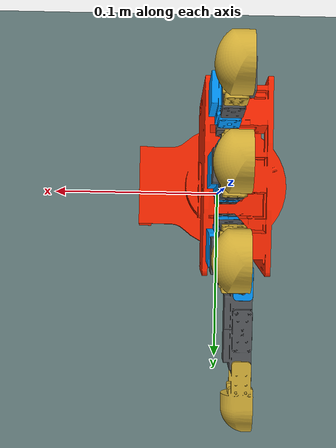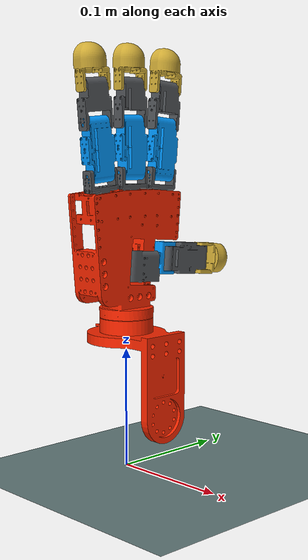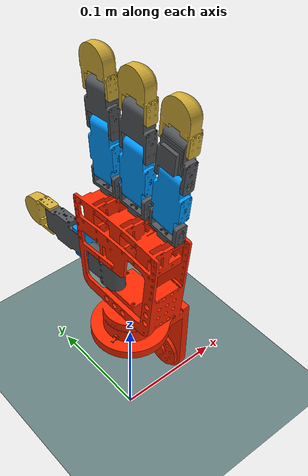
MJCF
<mujoco model="KIST-Hand">
	<compiler angle="radian" coordinate="local" inertiafromgeom="false" autolimits="true" meshdir="Meshes"/>

	<option	timestep="0.0004" gravity="0 0 -9.81" integrator="Euler" o_solref="0.005 0.2" o_solimp="0.95 0.98 0.01 0.5 2"
					cone="elliptic" jacobian="auto" solver="Newton" tolerance="1e-10" impratio="0.7"/>

	<option>
		<flag gravity="enable" override="enable"/>
	</option>

	<visual>
		<global fovy="45" linewidth="2" glow="0.5" realtime="1"/>
		<quality shadowsize="4096" numslices="48"/>
		<headlight ambient="0.5 0.5 0.5" diffuse="0.1 0.1 0.1" specular="1 1 1"/>
		<scale forcewidth="0.05" contactwidth="0.15" contactheight="0.1" com="0.2" jointlength="1.0" jointwidth="0.05"
					 actuatorlength="0.5" actuatorwidth="0.3" framelength="1.5" framewidth="0.05"/>
		<rgba haze="0.6 0.8 0.9 1" force="1 0 0 0.5" com="0 0 1 1"/>
	</visual>

	<default>
		<geom contype="1" conaffinity="1" condim="3" margin="0.001" material="MatLink" rgba="0.4 0.5 0.5 1"/>
		<joint limited="false" damping="0.03" armature="0.01" stiffness="0" frictionloss="0.01"/>
	</default>

	<asset>
		<texture name="texplane" type="2d"     builtin="checker"  width="512" height="512" mark="edge"
						 rgb1="0.2 0.3 0.4" rgb2="0.1 0.1 0.2" markrgb="1 1 1"/>
		<texture name="texgeom"  type="cube"   builtin="flat"     width="512" height="512" mark="cross"
						 rgb1="0.8 0.6 0.4" rgb2="0.8 0.6 0.4" markrgb="1 1 1"/>
		<texture name="sky"      type="skybox" builtin="gradient" width="512" height="512"
						 rgb1="1 1 1" rgb2="0.6 0.8 1"/>

		<material name="MatGnd" reflectance="0" specular="1" shininess="0.1" rgba="0 0.5 0.5 1"/>
		<material name="MatLink" emission="0" reflectance='0.5' specular="1" shininess="0.8"/>
		<material name="MatGeom" texture="texgeom" texuniform="true"/>
		<material name="MatPlane" texture="texplane" reflectance='0' texrepeat="1 1" texuniform="true"/>
	</asset>

	<asset>
		<mesh name="base_link" file="base_link.STL" />
		<mesh name="body_link" file="body_link.STL" />
		<mesh name="RArmJ1_Link" file="RArmJ1_Link.STL" />
		<mesh name="RArmJ2_Link" file="RArmJ2_Link.STL" />
		<mesh name="RArmJ3_Link" file="RArmJ3_Link.STL" />
		<mesh name="RArmJ4_Link" file="RArmJ4_Link.STL" />
		<mesh name="RArmJ5_Link" file="RArmJ5_Link.STL" />
		<mesh name="RArmJ6_Link" file="RArmJ6_Link.STL" />
		<mesh name="Hand_RT1" file="Hand_RT1.STL" />
		<mesh name="Hand_RT2" file="Hand_RT2.STL" />
		<mesh name="Hand_RT3" file="Hand_RT3.STL" />
		<mesh name="Hand_RT4" file="Hand_RT4.STL" />
		<mesh name="Hand_RF1J1" file="Hand_RF1J1.STL" />
		<mesh name="Hand_RF1J2" file="Hand_RF1J2.STL" />
		<mesh name="Hand_RF1J3" file="Hand_RF1J3.STL" />
		<mesh name="Hand_RF1J4" file="Hand_RF1J4.STL" />
		<mesh name="Hand_RF2J1" file="Hand_RF2J1.STL" />
		<mesh name="Hand_RF2J2" file="Hand_RF2J2.STL" />
		<mesh name="Hand_RF2J3" file="Hand_RF2J3.STL" />
		<mesh name="Hand_RF2J4" file="Hand_RF2J4.STL" />
		<mesh name="Hand_RF3J1" file="Hand_RF3J1.STL" />
		<mesh name="Hand_RF3J2" file="Hand_RF3J2.STL" />
		<mesh name="Hand_RF3J3" file="Hand_RF3J3.STL" />
		<mesh name="Hand_RF3J4" file="Hand_RF3J4.STL" />
		<mesh name="LArmJ1_Link" file="LArmJ1_Link.STL" />
		<mesh name="LArmJ2_Link" file="LArmJ2_Link.STL" />
		<mesh name="LArmJ3_Link" file="LArmJ3_Link.STL" />
		<mesh name="LArmJ4_Link" file="LArmJ4_Link.STL" />
		<mesh name="LArmJ5_Link" file="LArmJ5_Link.STL" />
		<mesh name="LArmJ6_Link" file="LArmJ6_Link.STL" />
		<mesh name="Hand_LT1" file="Hand_LT1.STL" />
		<mesh name="Hand_LT2" file="Hand_LT2.STL" />
		<mesh name="Hand_LT3" file="Hand_LT3.STL" />
		<mesh name="Hand_LT4" file="Hand_LT4.STL" />
		<mesh name="Hand_LF1J1" file="Hand_LF1J1.STL" />
		<mesh name="Hand_LF1J2" file="Hand_LF1J2.STL" />
		<mesh name="Hand_LF1J3" file="Hand_LF1J3.STL" />
		<mesh name="Hand_LF1J4" file="Hand_LF1J4.STL" />
		<mesh name="Hand_LF2J1" file="Hand_LF2J1.STL" />
		<mesh name="Hand_LF2J2" file="Hand_LF2J2.STL" />
		<mesh name="Hand_LF2J3" file="Hand_LF2J3.STL" />
		<mesh name="Hand_LF2J4" file="Hand_LF2J4.STL" />
		<mesh name="Hand_LF3J1" file="Hand_LF3J1.STL" />
		<mesh name="Hand_LF3J2" file="Hand_LF3J2.STL" />
		<mesh name="Hand_LF3J3" file="Hand_LF3J3.STL" />
		<mesh name="Hand_LF3J4" file="Hand_LF3J4.STL" />
	</asset>

	<worldbody>
		<light directional="true" pos=" 5 -5 5" dir="-0.5  0.5 -1" diffuse="0.3 0.3 0.3" castshadow="false"/>
		<light directional="true" pos=" 5  5 5" dir="-0.5 -0.5 -1" diffuse="0.3 0.3 0.3" castshadow="false"/>
		<light directional="true" pos="-5  5 5" dir=" 0.5 -0.5 -1" diffuse="0.3 0.3 0.3" castshadow="false"/>
		<light directional="true" pos="-5 -5 5" dir=" 0.5  0.5 -1" diffuse="0.3 0.3 0.3" castshadow="false"/>

		<geom name="Floor" type="plane" pos="0 0 0" size="0 0 10" material="MatPlane" solref="0.005 0.2" solimp="0.95 0.98 0.01 0.5 2"/>

		<body name="RArmJ6_Link" pos="0 0 0.05" quat="0 0.7071068 0 0.7071068">
			<joint name="J6" pos="0 0 0" axis="0 0 1" limited="true" range="-0.5 0.5" springdamper="0.01 1"/>
			<inertial pos="0.0894019 0.000764982 0.00970289" quat="0.129674 0.669786 -0.155093 0.714505"
								mass="0.317233" diaginertia="0.000124903 0.000112453 0.000100303"/>
			<geom type="mesh" rgba="1 0.15625 0 1" mesh="RArmJ6_Link"/>

			<!-- Right Thumb -->
			<body name="Hand_RT1" pos="0.125469 -0.010945 -0.006325" quat="0.706434 0.0308436 0.706434 -0.0308436">
				<joint name="RT1" pos="0 0 0" axis="0 0 -1" limited="true" range="0 1.8"/>
				<inertial pos="-5.49453e-05 -0.0141589 -0.0074296" quat="0.998952 -0.045631 0.000506768 -0.00355944"
									mass="0.0206488" diaginertia="1.87142e-06 1.36365e-06 9.66694e-07"/>
				<geom type="mesh" rgba="0.32421875 0.3359375 0.3515625 1" mesh="Hand_RT1"/>

				<body name="Hand_RT2" pos="-5e-05 -0.0441 0" quat="0.707107 -0.707107 0 0">
					<joint name="RT2" pos="0 0 0" axis="0 0 -1" limited="true" range="-1.57 1.57"/>
					<inertial pos="-2.98452e-12 0.000573264 0.00797915" quat="0.702887 0.711302 0 0"
										mass="0.00152599" diaginertia="6.01888e-08 5.38721e-08 3.40722e-08"/>
					<geom type="mesh" rgba="0 0.6 1 1" mesh="Hand_RT2"/>

					<body name="Hand_RT3" pos="0 0 0" quat="0.5 -0.5 0.5 0.5">
						<joint name="RT3" pos="0 0 0" axis="0 0 1" limited="true" range="0 1.8"/>
						<inertial pos="0.02005 0.000469812 -0.0005" quat="0.473244 0.525395 0.525395 0.473244"
											mass="0.0341379" diaginertia="3.07195e-06 2.04238e-06 1.54556e-06"/>
						<geom type="mesh" rgba="0.32421875 0.3359375 0.3515625 1" mesh="Hand_RT3"/>

						<body name="Hand_RT4" pos="0.0401 0 -0.000675">
							<joint name="RT4" pos="0 0 0" axis="0 0 -1" limited="true" range="-1.8 0"/>
							<inertial pos="0.0191982 6.45169e-05 -0.000413501" quat="0.778805 -0.000659988 -0.000727599 0.627266"
												mass="0.0098292" diaginertia="6.11343e-07 4.92403e-07 3.88556e-07"/>
							<geom name="rHand_tip1" type="mesh" rgba="0.828125 0.68359375 0.21484375 1" mesh="Hand_RT4"/>
							<site name="RT_EE" pos="0.020748 0 0" size="0.002" type="sphere" rgba="0 0 1 1"/>
						</body>
					</body>
				</body>
			</body>

			<!-- Right Index Finger -->
			<body name="Hand_RF1J1" pos="0.1959 -0.033168 0.006325" quat="0.706434 0.0308436 0.706434 -0.0308436">
				<joint name="RF1J1" pos="0 0 0" axis="0 0 -1" limited="true" range="-1.57 1.57"/>
				<inertial pos="-2.49922e-12 -0.000573264 -0.00797915" quat="0.702887 0.711302 0 0"
									mass="0.00152599" diaginertia="6.01888e-08 5.38721e-08 3.40722e-08"/>
				<geom type="mesh" rgba="0.32421875 0.3359375 0.3515625 1" mesh="Hand_RF1J1"/>

				<body name="Hand_RF1J2" pos="0 0.0005 0" quat="0.5 0.5 -0.5 0.5">
					<joint name="RF1J2" pos="0 0 0" axis="0 0 1" limited="true" range="0 1.8"/>
					<inertial pos="0.02005 0.000469812 0" quat="0.473244 0.525395 0.525395 0.473244"
										mass="0.0341379" diaginertia="3.07195e-06 2.04238e-06 1.54556e-06"/>
					<geom type="mesh" rgba="0 0.6 1 1" mesh="Hand_RF1J2"/>

					<body name="Hand_RF1J3" pos="0.0401 0 -0.000125">
						<joint name="RF1J3" pos="0 0 0" axis="0 0 -1" limited="true" range="-1.8 0"/>
						<inertial pos="0.0213453 0.000452463 -0.000262751" quat="0.47733 0.521686 0.521686 0.47733"
											mass="0.0177234" diaginertia="1.57868e-06 1.06889e-06 7.79807e-07"/>
						<geom type="mesh" rgba="0.32421875 0.3359375 0.3515625 1" mesh="Hand_RF1J3"/>

						<body name="Hand_RF1J4" pos="0.03005 0 -5e-05">
							<joint name="RF1J4" pos="0 0 0" axis="0 0 -1" limited="true" range="-1.8 0"/>
							<inertial pos="0.0191982 6.45169e-05 -0.000413501" quat="0.778805 -0.000659988 -0.000727599 0.627266"
												mass="0.0098292" diaginertia="6.11343e-07 4.92403e-07 3.88556e-07"/>
							<geom name="rHand_tip2" type="mesh" rgba="0.828125 0.68359375 0.21484375 1" mesh="Hand_RF1J4"/>
							<site name="RF1_EE" pos="0.020748 0 0"  size="0.002" type="sphere" rgba="0 0 1 1"/>
						</body>
					</body>
				</body>
			</body>

			<!-- Right Middle Finger -->
			<body name="Hand_RF2J1" pos="0.197348 0 0.006325" quat="0.707107 0 0.707107 0">
				<joint name="RF2J1" pos="0 0 0" axis="0 0 -1" limited="true" range="-1.57 1.57"/>
				<inertial pos="-2.49577e-12 -0.000573266 -0.00797915" quat="0.702887 0.711302 0 0"
									mass="0.00152599" diaginertia="6.01889e-08 5.38721e-08 3.40722e-08"/>
				<geom type="mesh" rgba="0.32421875 0.3359375 0.3515625 1" mesh="Hand_RF2J1"/>

				<body name="Hand_RF2J2" pos="0 0.0005 0" quat="0.5 0.5 -0.5 0.5">
					<joint name="RF2J2" pos="0 0 0" axis="0 0 1" limited="true" range="0 1.8"/>
					<inertial pos="0.02005 0.000469812 0" quat="0.473244 0.525395 0.525395 0.473244"
										mass="0.0341379" diaginertia="3.07195e-06 2.04238e-06 1.54556e-06"/>
					<geom type="mesh" rgba="0 0.6 1 1" mesh="Hand_RF2J2"/>

					<body name="Hand_RF2J3" pos="0.0401 0 -0.000125">
						<joint name="RF2J3" pos="0 0 0" axis="0 0 -1" limited="true" range="-1.8 0"/>
						<inertial pos="0.0213453 0.000452463 -0.000262751" quat="0.47733 0.521686 0.521686 0.47733"
											mass="0.0177234" diaginertia="1.57868e-06 1.06889e-06 7.79807e-07"/>
						<geom type="mesh" rgba="0.32421875 0.3359375 0.3515625 1" mesh="Hand_RF2J3"/>

						<body name="Hand_RF2J4" pos="0.03005 0 -5e-05">
							<joint name="RF2J4" pos="0 0 0" axis="0 0 -1" limited="true" range="-1.8 0"/>
							<inertial pos="0.0191982 6.45145e-05 -0.000413505" quat="0.778809 -0.000661237 -0.000728567 0.62726"
												mass="0.0098292" diaginertia="6.11342e-07 4.92404e-07 3.88555e-07"/>
							<geom name="rHand_tip3" type="mesh" rgba="0.828125 0.68359375 0.21484375 1" mesh="Hand_RF2J4"/>
							<site name="RF2_EE" pos="0.020748 0 0" size="0.002" type="sphere" rgba="0 0 1 1"/>
						</body>
					</body>
				</body>
			</body>

			<!-- Right Ring Finger -->
			<body name="Hand_RF3J1" pos="0.1959 0.033168 0.006325" quat="0.0308436 0.706434 0.0308436 -0.706434">
				<joint name="RF3J1" pos="0 0 0" axis="0 0 1" limited="true" range="-1.57 1.57"/>
				<inertial pos="0 0.000573267 0.00797915" quat="0.702887 0.711302 0 0"
									mass="0.00152599" diaginertia="6.01888e-08 5.38721e-08 3.40722e-08"/>
				<geom type="mesh" rgba="0.32421875 0.3359375 0.3515625 1" mesh="Hand_RF3J1"/>

				<body name="Hand_RF3J2" pos="0 -0.0005 0" quat="0.5 0.5 0.5 -0.5">
					<joint name="RF3J2" pos="0 0 0" axis="0 0 -1" limited="true" range="0 1.8"/>
					<inertial pos="0.02005 -0.000469812 0" quat="0.525395 0.473244 0.473244 0.525395"
										mass="0.0341379" diaginertia="3.07195e-06 2.04238e-06 1.54556e-06"/>
					<geom type="mesh" rgba="0 0.6 1 1" mesh="Hand_RF3J2"/>

					<body name="Hand_RF3J3" pos="0.0401 0 0.000125">
						<joint name="RF3J3" pos="0 0 0" axis="0 0 1" limited="true" range="-1.8 0"/>
						<inertial pos="0.0213453 -0.000452463 0.000262751" quat="0.521686 0.47733 0.47733 0.521686"
											mass="0.0177234" diaginertia="1.57868e-06 1.06889e-06 7.79807e-07"/>
						<geom type="mesh" rgba="0.32421875 0.3359375 0.3515625 1" mesh="Hand_RF3J3"/>

						<body name="Hand_RF3 J4" pos="0.03005 0 5e-05">
							<joint name="RF3J4" pos="0 0 0" axis="0 0 1" limited="true" range="-1.8 0"/>
							<inertial pos="0.0191982 -6.4521e-05 0.000413504" quat="0.627261 0.000727904 0.000661492 0.778808"
												mass="0.00982919" diaginertia="6.11342e-07 4.92404e-07 3.88555e-07" />
							<geom name="rHand_tip4" type="mesh" rgba="0.828125 0.68359375 0.21484375 1" mesh="Hand_RF3J4"/>
							<site name="RF3_EE" pos="0.020748 0 0" size="0.002" type="sphere" rgba="0 0 1 1"/>
						</body>
					</body>
				</body>
			</body>

		</body>
	</worldbody>

	<actuator>
		<general name="J_6" joint="J6" gear="1" ctrllimited="false" ctrlrange="-250 250" />
		<general name="RT_1" joint="RT1" gear="1" ctrllimited="false" ctrlrange="-100 100" />
		<general name="RT_2" joint="RT2" gear="1" ctrllimited="false" ctrlrange="-100 100" />
		<general name="RT_3" joint="RT3" gear="1" ctrllimited="false" ctrlrange="-100 100" />
		<general name="RT_4" joint="RT4" gear="1" ctrllimited="false" ctrlrange="-100 100" />
		<general name="RF1J_1" joint="RF1J1" gear="1" ctrllimited="false" ctrlrange="-100 100" />
		<general name="RF1J_2" joint="RF1J2" gear="1" ctrllimited="false" ctrlrange="-100 100" />
		<general name="RF1J_3" joint="RF1J3" gear="1" ctrllimited="false" ctrlrange="-100 100" />
		<general name="RF1J_4" joint="RF1J4" gear="1" ctrllimited="false" ctrlrange="-100 100" />
		<general name="RF2J_1" joint="RF2J1" gear="1" ctrllimited="false" ctrlrange="-100 100" />
		<general name="RF2J_2" joint="RF2J2" gear="1" ctrllimited="false" ctrlrange="-100 100" />
		<general name="RF2J_3" joint="RF2J3" gear="1" ctrllimited="false" ctrlrange="-100 100" />
		<general name="RF2J_4" joint="RF2J4" gear="1" ctrllimited="false" ctrlrange="-100 100" />
		<general name="RF3J_1" joint="RF3J1" gear="1" ctrllimited="false" ctrlrange="-100 100" />
		<general name="RF3J_2" joint="RF3J2" gear="1" ctrllimited="false" ctrlrange="-100 100" />
		<general name="RF3J_3" joint="RF3J3" gear="1" ctrllimited="false" ctrlrange="-100 100" />
		<general name="RF3J_4" joint="RF3J4" gear="1" ctrllimited="false" ctrlrange="-100 100" />
	</actuator>

</mujoco>
